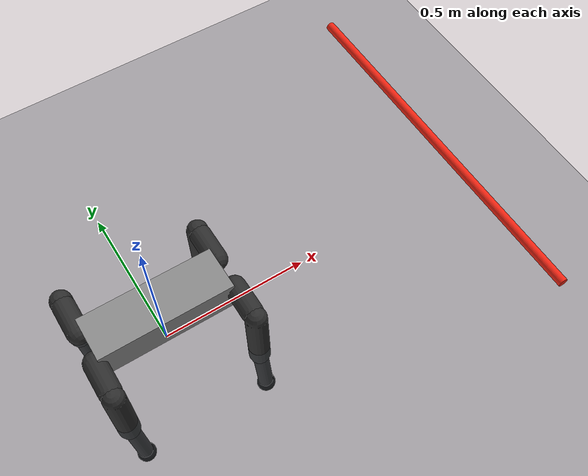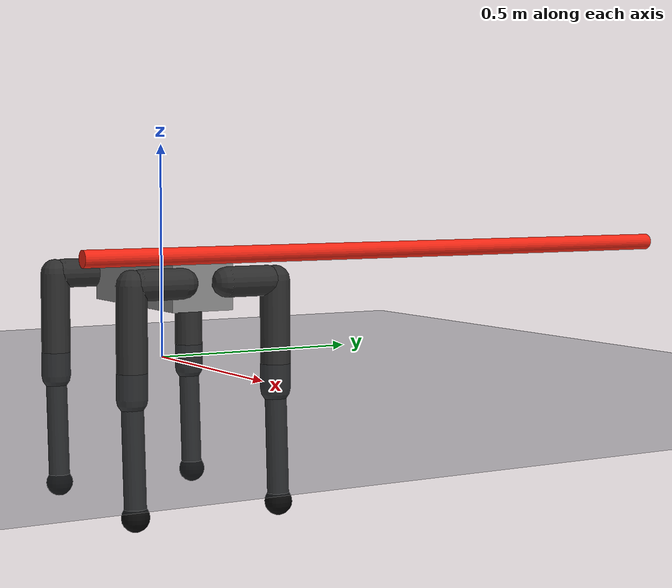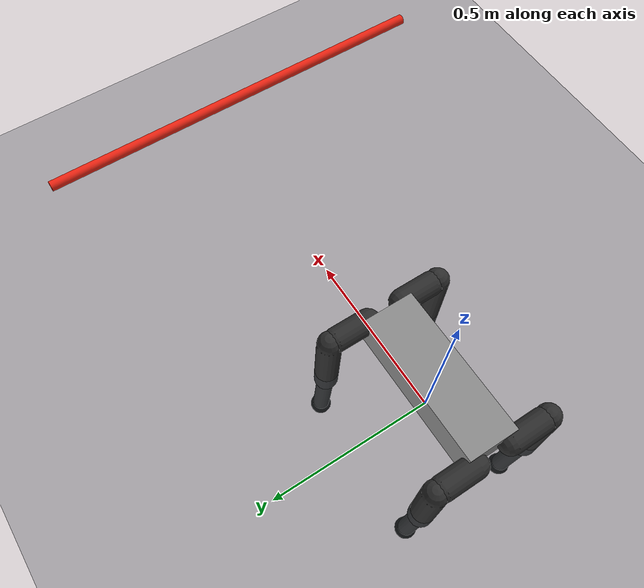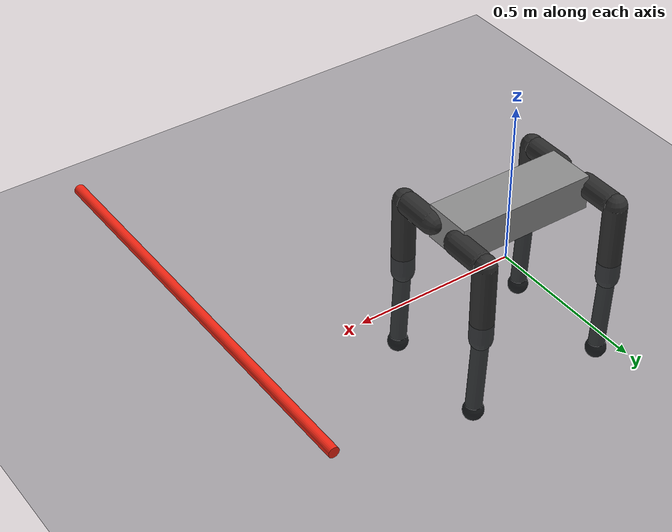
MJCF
<mujoco model="rc_low_bar">
  <compiler angle="radian" coordinate="local" inertiafromgeom="false"/>

  <option timestep="0.005" iterations="50" solver="Newton" gravity="0 0 -9.81"/>

  <size njmax="500" nconmax="200"/>

  <default>
    <joint damping="0" armature="0.02" limited="true"/>
    <geom contype="1" conaffinity="1" condim="3" friction="0.9 0.02 0.001" solref="0.01 1" solimp="0.9 0.95 0.001"/>
    <motor ctrllimited="true"/>
  </default>

  <asset>
    <material name="body_gray" rgba="0.55 0.55 0.55 1"/>
    <material name="leg_dark" rgba="0.18 0.18 0.18 1"/>
    <material name="foot_black" rgba="0.03 0.03 0.03 1"/>
    <material name="bar_red" rgba="0.95 0.15 0.08 1"/>
    <texture name="grid" type="2d" builtin="checker" width="512" height="512" rgb1="0.18 0.20 0.22" rgb2="0.25 0.27 0.30"/>
    <material name="ground_grid" texture="grid" texrepeat="4 4" reflectance="0.05"/>
  </asset>

  <worldbody>
    <light name="key" mode="targetbodycom" target="base_link" pos="0 -3 4"/>
    <camera name="track" mode="trackcom" pos="-0.8 -3.0 1.0" xyaxes="1 0 0 0 0.32 0.95"/>

    <geom name="floor" type="plane" size="8 4 0.1" material="ground_grid"/>
    <geom name="low_bar" type="cylinder" pos="1.0 0 0.30" size="0.015 0.60" quat="0.70710678118 0.70710678118 0 0" material="bar_red"/>

    <body name="base_link" pos="0 0 0.18">
      <freejoint name="floating_base"/>
      <inertial pos="0.0018007 0.00050163 -0.0031242" mass="3.8805"
                fullinertia="0.0091487 0.0093184 0.015121 2.5012e-07 -1.6225e-07 5.4053e-07"/>
      <geom name="base_collision" type="box" pos="0 0 0" size="0.22 0.075 0.055" material="body_gray"/>

      <body name="FL_hip_link" pos="0.2295 0.055 0.01">
        <joint name="FL_hip_joint" type="hinge" axis="-1 0 0" range="-0.9773843811168246 0.9773843811168246"/>
        <inertial pos="-0.0540576457460417 0.01476386488615 2.01742383239972e-07" mass="0.0803274368129952"
                  fullinertia="4.0947299372694e-05 4.21406633118441e-05 2.37088095622772e-05 6.41500278851855e-06 -9.8553493028397e-11 -3.94263588564453e-10"/>
        <geom name="FL_hip_collision" type="capsule" fromto="0 0 0 0 0.105 0" size="0.035" material="leg_dark"/>
        <body name="FL_thigh_link" pos="0 0.1231 0">
          <joint name="FL_thigh_joint" type="hinge" axis="0 1 0" range="-1.0471975511965976 4.1887902047863905"/>
          <inertial pos="-0.00324683145552185 -0.015244559490958 -0.0804104624359151" mass="0.816135538538748"
                    fullinertia="0.00268607986891831 0.00298577665716733 0.000383303838645601 -1.67684650759994e-08 3.04326650841841e-05 1.29861318095895e-07"/>
          <geom name="FL_thigh_collision" type="capsule" fromto="0 0 0 0 0.001 -0.25" size="0.035" material="leg_dark"/>
          <body name="FL_calf_link" pos="0 0.001 -0.25">
            <joint name="FL_calf_joint" type="hinge" axis="0 1 0" range="-2.8012534494508987 -0.7417649320975901"/>
            <inertial pos="0.0139745255514478 -4.54045953959537e-05 -0.15970981716497" mass="0.125414534718457"
                      fullinertia="0.000429468680832491 0.000440847899430506 1.86404975077032e-05 -1.9189027086433e-09 -5.1064766146865e-05 1.7274554868746e-09"/>
            <geom name="FL_calf_collision" type="capsule" fromto="0 0 0 0.0125580634092529 0 -0.261416391848117" size="0.025" material="leg_dark"/>
            <body name="FL_feet_joint" pos="0.0125580634092529 0 -0.261416391848117">
              <inertial pos="-0.00120234554419277 5.10732945657733e-08 -0.00024041889031301" mass="0.0311288185938769"
                        fullinertia="5.01532145993828e-06 4.46001536853022e-06 4.52316509579092e-06 2.69103862817347e-12 -3.4158708817764e-07 2.68520602888951e-11"/>
              <geom name="FL_foot_collision" type="sphere" size="0.032" material="foot_black"/>
            </body>
          </body>
        </body>
      </body>

      <body name="FR_hip_link" pos="0.2295 -0.055 0.01">
        <joint name="FR_hip_joint" type="hinge" axis="-1 0 0" range="-0.9773843811168246 0.9773843811168246"/>
        <inertial pos="-0.0540576457460417 -0.01476386488615 2.01742383239972e-07" mass="0.0803274368129952"
                  fullinertia="4.0947299372694e-05 4.21406633118441e-05 2.37088095622772e-05 -6.41500278851855e-06 -9.8553493028397e-11 3.94263588564453e-10"/>
        <geom name="FR_hip_collision" type="capsule" fromto="0 0 0 0 -0.105 0" size="0.035" material="leg_dark"/>
        <body name="FR_thigh_link" pos="0 -0.1231 0">
          <joint name="FR_thigh_joint" type="hinge" axis="0 1 0" range="-1.0471975511965976 4.1887902047863905"/>
          <inertial pos="-0.00324683145552185 0.015244559490958 -0.0804104624359151" mass="0.816135538538748"
                    fullinertia="0.00268607986891831 0.00298577665716733 0.000383303838645601 1.67684650759994e-08 3.04326650841841e-05 -1.29861318095895e-07"/>
          <geom name="FR_thigh_collision" type="capsule" fromto="0 0 0 0 -0.001 -0.25" size="0.035" material="leg_dark"/>
          <body name="FR_calf_link" pos="0 -0.001 -0.25">
            <joint name="FR_calf_joint" type="hinge" axis="0 1 0" range="-2.8012534494508987 -0.7417649320975901"/>
            <inertial pos="0.0139745255514478 4.54045953959537e-05 -0.15970981716497" mass="0.125414534718457"
                      fullinertia="0.000429468680832491 0.000440847899430506 1.86404975077032e-05 1.9189027086433e-09 -5.1064766146865e-05 -1.7274554868746e-09"/>
            <geom name="FR_calf_collision" type="capsule" fromto="0 0 0 0.0125580634092921 0 -0.261416391848119" size="0.025" material="leg_dark"/>
            <body name="FR_feet_joint" pos="0.0125580634092921 0 -0.261416391848119">
              <inertial pos="-0.00120234554419277 -5.10732945657733e-08 -0.00024041889031301" mass="0.0311288185938769"
                        fullinertia="5.01532145993828e-06 4.46001536853022e-06 4.52316509579092e-06 -2.69103862817347e-12 -3.4158708817764e-07 -2.68520602888951e-11"/>
              <geom name="FR_foot_collision" type="sphere" size="0.032" material="foot_black"/>
            </body>
          </body>
        </body>
      </body>

      <body name="RL_hip_link" pos="-0.2295 0.055 0.01">
        <joint name="RL_hip_joint" type="hinge" axis="1 0 0" range="-0.9773843811168246 0.9773843811168246"/>
        <inertial pos="0.0540576457460417 0.01476386488615 2.01742383239972e-07" mass="0.0803274368129952"
                  fullinertia="4.0947299372694e-05 4.21406633118441e-05 2.37088095622772e-05 -6.41500278851855e-06 9.8553493028397e-11 -3.94263588564453e-10"/>
        <geom name="RL_hip_collision" type="capsule" fromto="0 0 0 0 0.105 0" size="0.035" material="leg_dark"/>
        <body name="RL_thigh_link" pos="0 0.1231 0">
          <joint name="RL_thigh_joint" type="hinge" axis="0 1 0" range="-1.0471975511965976 4.1887902047863905"/>
          <inertial pos="0.00324683145552185 -0.015244559490958 -0.0804104624359151" mass="0.816135538538748"
                    fullinertia="0.00268607986891831 0.00298577665716733 0.000383303838645601 1.67684650759994e-08 -3.04326650841841e-05 1.29861318095895e-07"/>
          <geom name="RL_thigh_collision" type="capsule" fromto="0 0 0 0 0.001 -0.25" size="0.035" material="leg_dark"/>
          <body name="RL_calf_link" pos="0 0.001 -0.25">
            <joint name="RL_calf_joint" type="hinge" axis="0 1 0" range="-2.8012534494508987 -0.7417649320975901"/>
            <inertial pos="-0.0139745255514478 -4.54045953959537e-05 -0.15970981716497" mass="0.125414534718457"
                      fullinertia="0.000429468680832491 0.000440847899430506 1.86404975077032e-05 1.9189027086433e-09 5.1064766146865e-05 1.7274554868746e-09"/>
            <geom name="RL_calf_collision" type="capsule" fromto="0 0 0 0.0125580634092528 0 -0.261416391848117" size="0.025" material="leg_dark"/>
            <body name="RL_feet_joint" pos="0.0125580634092528 0 -0.261416391848117">
              <inertial pos="0.00120234554419277 5.10732945657733e-08 -0.00024041889031301" mass="0.0311288185938769"
                        fullinertia="5.01532145993828e-06 4.46001536853022e-06 4.52316509579092e-06 -2.69103862817347e-12 3.4158708817764e-07 2.68520602888951e-11"/>
              <geom name="RL_foot_collision" type="sphere" size="0.032" material="foot_black"/>
            </body>
          </body>
        </body>
      </body>

      <body name="RR_hip_link" pos="-0.2295 -0.055 0.01">
        <joint name="RR_hip_joint" type="hinge" axis="1 0 0" range="-0.9773843811168246 0.9773843811168246"/>
        <inertial pos="0.0540576457460417 -0.01476386488615 2.01742383239972e-07" mass="0.0803274368129952"
                  fullinertia="4.0947299372694e-05 4.21406633118441e-05 2.37088095622772e-05 6.41500278851855e-06 9.8553493028397e-11 3.94263588564453e-10"/>
        <geom name="RR_hip_collision" type="capsule" fromto="0 0 0 0 -0.105 0" size="0.035" material="leg_dark"/>
        <body name="RR_thigh_link" pos="0 -0.1231 0">
          <joint name="RR_thigh_joint" type="hinge" axis="0 1 0" range="-1.0471975511965976 4.1887902047863905"/>
          <inertial pos="0.00324683145552185 0.015244559490958 -0.0804104624359151" mass="0.816135538538748"
                    fullinertia="0.00268607986891831 0.00298577665716733 0.000383303838645601 -1.67684650759994e-08 -3.04326650841841e-05 -1.29861318095895e-07"/>
          <geom name="RR_thigh_collision" type="capsule" fromto="0 0 0 0 -0.001 -0.25" size="0.035" material="leg_dark"/>
          <body name="RR_calf_link" pos="0 -0.001 -0.25">
            <joint name="RR_calf_joint" type="hinge" axis="0 1 0" range="-2.8012534494508987 -0.7417649320975901"/>
            <inertial pos="-0.0139745255514478 4.54045953959537e-05 -0.15970981716497" mass="0.125414534718457"
                      fullinertia="0.000429468680832491 0.000440847899430506 1.86404975077032e-05 -1.9189027086433e-09 5.1064766146865e-05 -1.7274554868746e-09"/>
            <geom name="RR_calf_collision" type="capsule" fromto="0 0 0 0.0125580634092921 0 -0.261416391848119" size="0.025" material="leg_dark"/>
            <body name="RR_feet_joint" pos="0.0125580634092921 0 -0.261416391848119">
              <inertial pos="0.00120234554419277 -5.10732945657733e-08 -0.00024041889031301" mass="0.0311288185938769"
                        fullinertia="5.01532145993828e-06 4.46001536853022e-06 4.52316509579092e-06 2.69103862817347e-12 3.4158708817764e-07 -2.68520602888951e-11"/>
              <geom name="RR_foot_collision" type="sphere" size="0.032" material="foot_black"/>
            </body>
          </body>
        </body>
      </body>
    </body>
  </worldbody>

  <actuator>
    <motor name="FL_hip_motor" joint="FL_hip_joint" gear="1" ctrlrange="-20 20"/>
    <motor name="FL_thigh_motor" joint="FL_thigh_joint" gear="1" ctrlrange="-30 30"/>
    <motor name="FL_calf_motor" joint="FL_calf_joint" gear="1" ctrlrange="-30 30"/>
    <motor name="FR_hip_motor" joint="FR_hip_joint" gear="1" ctrlrange="-20 20"/>
    <motor name="FR_thigh_motor" joint="FR_thigh_joint" gear="1" ctrlrange="-30 30"/>
    <motor name="FR_calf_motor" joint="FR_calf_joint" gear="1" ctrlrange="-30 30"/>
    <motor name="RL_hip_motor" joint="RL_hip_joint" gear="1" ctrlrange="-20 20"/>
    <motor name="RL_thigh_motor" joint="RL_thigh_joint" gear="1" ctrlrange="-30 30"/>
    <motor name="RL_calf_motor" joint="RL_calf_joint" gear="1" ctrlrange="-30 30"/>
    <motor name="RR_hip_motor" joint="RR_hip_joint" gear="1" ctrlrange="-20 20"/>
    <motor name="RR_thigh_motor" joint="RR_thigh_joint" gear="1" ctrlrange="-30 30"/>
    <motor name="RR_calf_motor" joint="RR_calf_joint" gear="1" ctrlrange="-30 30"/>
  </actuator>
</mujoco>
